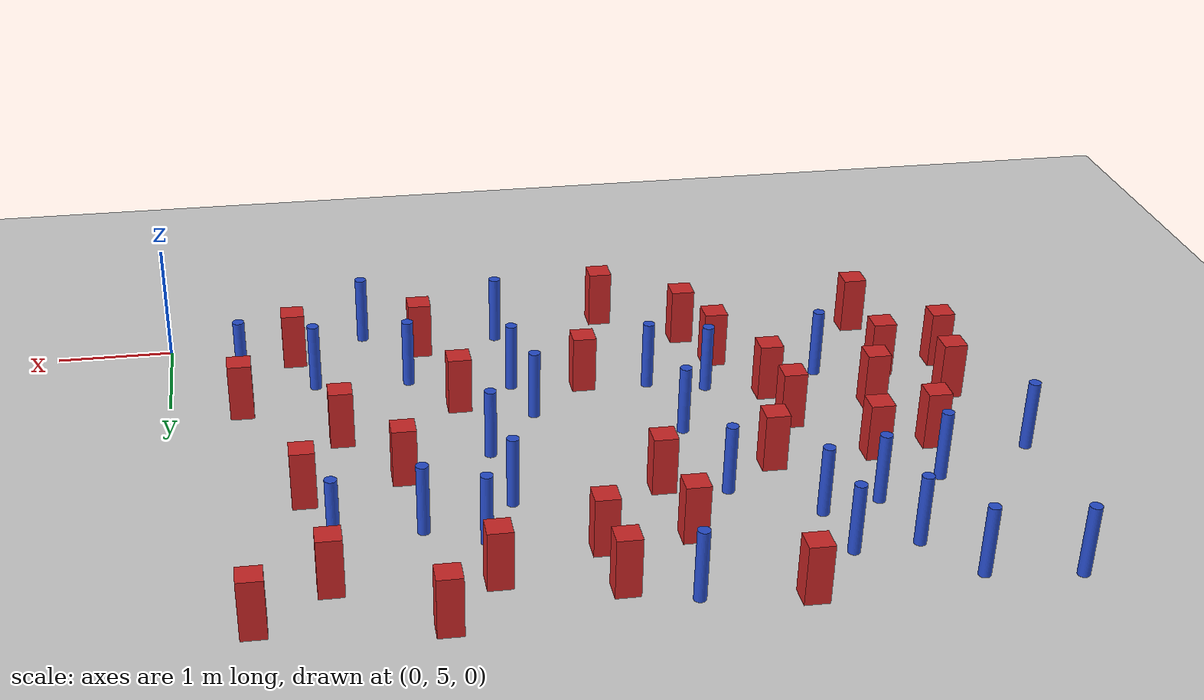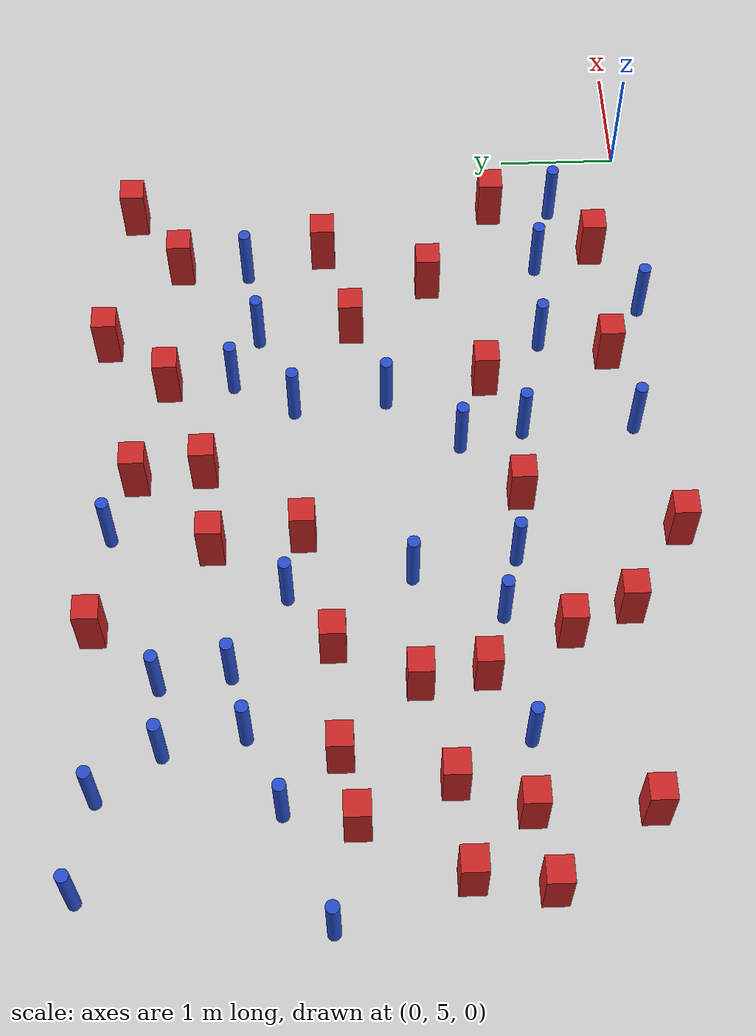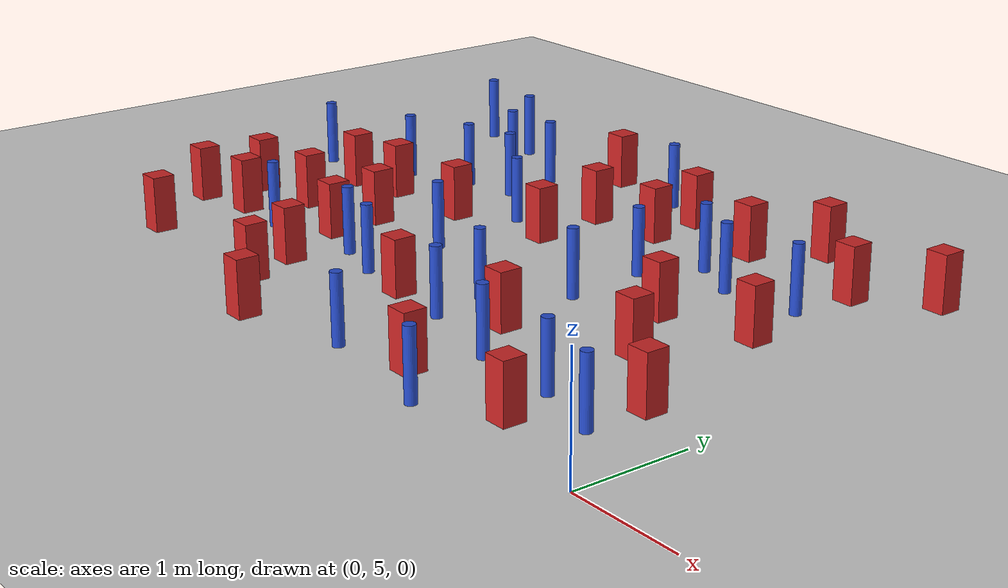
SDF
<sdf version="1.6">
 <world name="default">
  <model name="ground_plane">
   <static>1</static>
   <link name="link">
    <collision name="collision">
     <geometry><plane><normal>0 0 1</normal><size>100 100</size></plane></geometry>
     <surface><friction><ode><mu>100</mu><mu2>50</mu2></ode></friction></surface>
    </collision>
    <visual name="visual">
     <cast_shadows>0</cast_shadows>
     <geometry><plane><normal>0 0 1</normal><size>100 100</size></plane></geometry>
     <material>
      <ambient>1.0 1.0 1.0 1.0</ambient>
      <diffuse>0.8 0.8 0.8 1.0</diffuse>
      <specular>0.01 0.01 0.01 1.000000</specular>
     </material>
    </visual>
   </link>
  </model>
  <model name="square_post_obstacle26">
   <static>true</static>
   <pose>-1.99690841157 9.4471703377 8.22691968438e-08 7.22125133819e-06 -7.54495500217e-07 2.29674213826e-05</pose>
   <link name="link">
    <pose>0 0 0.25 0 -0 0</pose>
    <inertial>
     <mass>100</mass>
     <inertia>
      <ixx>0.166667</ixx>
      <ixy>0</ixy>
      <ixz>0</ixz>
      <iyy>0.166667</iyy>
      <iyz>0</iyz>
      <izz>0.166667</izz>
     </inertia>
    </inertial>
    <collision name="collision"><geometry><box><size>.2 .2 .5</size></box></geometry></collision>
    <visual name="visual">
     <geometry><box><size>.2 .2 .5</size></box></geometry>
     <material>
      <script><name>Gazebo/Red</name><uri>file://media/materials/scripts/gazebo.material</uri></script>
     </material>
    </visual>
   </link>
  </model>
  <model name="square_post_obstacle27">
   <static>true</static>
   <pose>-6.18605493413 6.22715426058 8.22691968438e-08 7.22125133819e-06 -7.54495500217e-07 2.29674213826e-05</pose>
   <link name="link">
    <pose>0 0 0.25 0 -0 0</pose>
    <inertial>
     <mass>100</mass>
     <inertia>
      <ixx>0.166667</ixx>
      <ixy>0</ixy>
      <ixz>0</ixz>
      <iyy>0.166667</iyy>
      <iyz>0</iyz>
      <izz>0.166667</izz>
     </inertia>
    </inertial>
    <collision name="collision"><geometry><box><size>.2 .2 .5</size></box></geometry></collision>
    <visual name="visual">
     <geometry><box><size>.2 .2 .5</size></box></geometry>
     <material>
      <script><name>Gazebo/Red</name><uri>file://media/materials/scripts/gazebo.material</uri></script>
     </material>
    </visual>
   </link>
  </model>
  <model name="square_post_obstacle28">
   <static>true</static>
   <pose>-5.72116184644 7.58453631129 8.22691968438e-08 7.2212513382e-06 -7.54495500217e-07 2.29674213826e-05</pose>
   <link name="link">
    <pose>0 0 0.25 0 -0 0</pose>
    <inertial>
     <mass>100</mass>
     <inertia>
      <ixx>0.166667</ixx>
      <ixy>0</ixy>
      <ixz>0</ixz>
      <iyy>0.166667</iyy>
      <iyz>0</iyz>
      <izz>0.166667</izz>
     </inertia>
    </inertial>
    <collision name="collision"><geometry><box><size>.2 .2 .5</size></box></geometry></collision>
    <visual name="visual">
     <geometry><box><size>.2 .2 .5</size></box></geometry>
     <material>
      <script><name>Gazebo/Red</name><uri>file://media/materials/scripts/gazebo.material</uri></script>
     </material>
    </visual>
   </link>
  </model>
  <model name="square_post_obstacle30">
   <static>true</static>
   <pose>-1.41584440362 6.75614959326 8.22691968438e-08 7.2212513382e-06 -7.54495500217e-07 2.29674213826e-05</pose>
   <link name="link">
    <pose>0 0 0.25 0 -0 0</pose>
    <inertial>
     <mass>100</mass>
     <inertia>
      <ixx>0.166667</ixx>
      <ixy>0</ixy>
      <ixz>0</ixz>
      <iyy>0.166667</iyy>
      <iyz>0</iyz>
      <izz>0.166667</izz>
     </inertia>
    </inertial>
    <collision name="collision"><geometry><box><size>.2 .2 .5</size></box></geometry></collision>
    <visual name="visual">
     <geometry><box><size>.2 .2 .5</size></box></geometry>
     <material>
      <script><name>Gazebo/Red</name><uri>file://media/materials/scripts/gazebo.material</uri></script>
     </material>
    </visual>
   </link>
  </model>
  <model name="pole_obstacle20">
   <static>true</static>
   <pose>-6.12993700592 8.00740763405 2.88873142074e-08 -9.90536690354e-09 4.60219948977e-07 -1.20965994967e-07</pose>
   <link name="link">
    <pose>0 0 0.3 0 -0 0</pose>
    <inertial>
     <mass>1</mass>
     <inertia><ixx>0.145833</ixx><ixy>0</ixy><ixz>0</ixz><iyy>0.145833</iyy><iyz>0</iyz><izz>0.125</izz></inertia>
    </inertial>
    <collision name="collision">
     <geometry><cylinder><radius>0.05</radius><length>.6</length></cylinder></geometry>
    </collision>
    <visual name="visual">
     <geometry><cylinder><radius>0.05</radius><length>.6</length></cylinder></geometry>
     <material>
      <script><name>Gazebo/Blue</name><uri>file://media/materials/scripts/gazebo.material</uri></script>
     </material>
    </visual>
   </link>
  </model>
  <model name="pole_obstacle32">
   <static>true</static>
   <pose>-5.99088189422 9.35597275805 2.88873142074e-08 -9.9053668967e-09 4.60219948993e-07 -1.20965994957e-07</pose>
   <link name="link">
    <pose>0 0 0.3 0 -0 0</pose>
    <inertial>
     <mass>1</mass>
     <inertia><ixx>0.145833</ixx><ixy>0</ixy><ixz>0</ixz><iyy>0.145833</iyy><iyz>0</iyz><izz>0.125</izz></inertia>
    </inertial>
    <collision name="collision">
     <geometry><cylinder><radius>0.05</radius><length>.6</length></cylinder></geometry>
    </collision>
    <visual name="visual">
     <geometry><cylinder><radius>0.05</radius><length>.6</length></cylinder></geometry>
     <material>
      <script><name>Gazebo/Blue</name><uri>file://media/materials/scripts/gazebo.material</uri></script>
     </material>
    </visual>
   </link>
  </model>
  <model name="pole_obstacle35">
   <static>true</static>
   <pose>-1.72144312253 4.96573093868 2.88873142074e-08 -9.90536689852e-09 4.60219948989e-07 -1.2096599496e-07</pose>
   <link name="link">
    <pose>0 0 0.3 0 -0 0</pose>
    <inertial>
     <mass>1</mass>
     <inertia><ixx>0.145833</ixx><ixy>0</ixy><ixz>0</ixz><iyy>0.145833</iyy><iyz>0</iyz><izz>0.125</izz></inertia>
    </inertial>
    <collision name="collision">
     <geometry><cylinder><radius>0.05</radius><length>.6</length></cylinder></geometry>
    </collision>
    <visual name="visual">
     <geometry><cylinder><radius>0.05</radius><length>.6</length></cylinder></geometry>
     <material>
      <script><name>Gazebo/Blue</name><uri>file://media/materials/scripts/gazebo.material</uri></script>
     </material>
    </visual>
   </link>
  </model>
  <model name="pole_obstacle36">
   <static>true</static>
   <pose>-5.0465634937 8.38615592661 2.88873142074e-08 -9.9053668967e-09 4.60219948993e-07 -1.20965994957e-07</pose>
   <link name="link">
    <pose>0 0 0.3 0 -0 0</pose>
    <inertial>
     <mass>1</mass>
     <inertia><ixx>0.145833</ixx><ixy>0</ixy><ixz>0</ixz><iyy>0.145833</iyy><iyz>0</iyz><izz>0.125</izz></inertia>
    </inertial>
    <collision name="collision">
     <geometry><cylinder><radius>0.05</radius><length>.6</length></cylinder></geometry>
    </collision>
    <visual name="visual">
     <geometry><cylinder><radius>0.05</radius><length>.6</length></cylinder></geometry>
     <material>
      <script><name>Gazebo/Blue</name><uri>file://media/materials/scripts/gazebo.material</uri></script>
     </material>
    </visual>
   </link>
  </model>
  <model name="pole_obstacle38">
   <static>true</static>
   <pose>-4.39575598108 7.96659562513 2.88873142074e-08 -9.90536689847e-09 4.60219948989e-07 -1.2096599496e-07</pose>
   <link name="link">
    <pose>0 0 0.3 0 -0 0</pose>
    <inertial>
     <mass>1</mass>
     <inertia><ixx>0.145833</ixx><ixy>0</ixy><ixz>0</ixz><iyy>0.145833</iyy><iyz>0</iyz><izz>0.125</izz></inertia>
    </inertial>
    <collision name="collision">
     <geometry><cylinder><radius>0.05</radius><length>.6</length></cylinder></geometry>
    </collision>
    <visual name="visual">
     <geometry><cylinder><radius>0.05</radius><length>.6</length></cylinder></geometry>
     <material>
      <script><name>Gazebo/Blue</name><uri>file://media/materials/scripts/gazebo.material</uri></script>
     </material>
    </visual>
   </link>
  </model>
  <model name="square_post_obstacle38">
   <static>true</static>
   <pose>-6.65776101693 6.68613472009 8.22691968438e-08 7.22125133819e-06 -7.54495500217e-07 2.29674213826e-05</pose>
   <link name="link">
    <pose>0 0 0.25 0 -0 0</pose>
    <inertial>
     <mass>100</mass>
     <inertia>
      <ixx>0.166667</ixx>
      <ixy>0</ixy>
      <ixz>0</ixz>
      <iyy>0.166667</iyy>
      <iyz>0</iyz>
      <izz>0.166667</izz>
     </inertia>
    </inertial>
    <collision name="collision"><geometry><box><size>.2 .2 .5</size></box></geometry></collision>
    <visual name="visual">
     <geometry><box><size>.2 .2 .5</size></box></geometry>
     <material>
      <script><name>Gazebo/Red</name><uri>file://media/materials/scripts/gazebo.material</uri></script>
     </material>
    </visual>
   </link>
  </model>
  <model name="pole_obstacle39">
   <static>true</static>
   <pose>-6.71826534434 9.4580164645 2.88873142074e-08 -9.9053668967e-09 4.60219948993e-07 -1.20965994957e-07</pose>
   <link name="link">
    <pose>0 0 0.3 0 -0 0</pose>
    <inertial>
     <mass>1</mass>
     <inertia><ixx>0.145833</ixx><ixy>0</ixy><ixz>0</ixz><iyy>0.145833</iyy><iyz>0</iyz><izz>0.125</izz></inertia>
    </inertial>
    <collision name="collision">
     <geometry><cylinder><radius>0.05</radius><length>.6</length></cylinder></geometry>
    </collision>
    <visual name="visual">
     <geometry><cylinder><radius>0.05</radius><length>.6</length></cylinder></geometry>
     <material>
      <script><name>Gazebo/Blue</name><uri>file://media/materials/scripts/gazebo.material</uri></script>
     </material>
    </visual>
   </link>
  </model>
  <model name="pole_obstacle46">
   <static>true</static>
   <pose>-1.94509423327 8.19378915669 2.88873142074e-08 -9.90536690474e-09 4.60219948974e-07 -1.2096599497e-07</pose>
   <link name="link">
    <pose>0 0 0.3 0 -0 0</pose>
    <inertial>
     <mass>1</mass>
     <inertia><ixx>0.145833</ixx><ixy>0</ixy><ixz>0</ixz><iyy>0.145833</iyy><iyz>0</iyz><izz>0.125</izz></inertia>
    </inertial>
    <collision name="collision">
     <geometry><cylinder><radius>0.05</radius><length>.6</length></cylinder></geometry>
    </collision>
    <visual name="visual">
     <geometry><cylinder><radius>0.05</radius><length>.6</length></cylinder></geometry>
     <material>
      <script><name>Gazebo/Blue</name><uri>file://media/materials/scripts/gazebo.material</uri></script>
     </material>
    </visual>
   </link>
  </model>
  <model name="square_post_obstacle57">
   <static>true</static>
   <pose>-3.32416064802 9.16238090248 8.22691968438e-08 7.22125133819e-06 -7.54495500217e-07 2.29674213826e-05</pose>
   <link name="link">
    <pose>0 0 0.25 0 -0 0</pose>
    <inertial>
     <mass>100</mass>
     <inertia>
      <ixx>0.166667</ixx>
      <ixy>0</ixy>
      <ixz>0</ixz>
      <iyy>0.166667</iyy>
      <iyz>0</iyz>
      <izz>0.166667</izz>
     </inertia>
    </inertial>
    <collision name="collision"><geometry><box><size>.2 .2 .5</size></box></geometry></collision>
    <visual name="visual">
     <geometry><box><size>.2 .2 .5</size></box></geometry>
     <material>
      <script><name>Gazebo/Red</name><uri>file://media/materials/scripts/gazebo.material</uri></script>
     </material>
    </visual>
   </link>
  </model>
  <model name="pole_obstacle60">
   <static>true</static>
   <pose>-1.25053326513 5.8081163606 2.88873142074e-08 -9.90536689852e-09 4.60219948989e-07 -1.2096599496e-07</pose>
   <link name="link">
    <pose>0 0 0.3 0 -0 0</pose>
    <inertial>
     <mass>1</mass>
     <inertia><ixx>0.145833</ixx><ixy>0</ixy><ixz>0</ixz><iyy>0.145833</iyy><iyz>0</iyz><izz>0.125</izz></inertia>
    </inertial>
    <collision name="collision">
     <geometry><cylinder><radius>0.05</radius><length>.6</length></cylinder></geometry>
    </collision>
    <visual name="visual">
     <geometry><cylinder><radius>0.05</radius><length>.6</length></cylinder></geometry>
     <material>
      <script><name>Gazebo/Blue</name><uri>file://media/materials/scripts/gazebo.material</uri></script>
     </material>
    </visual>
   </link>
  </model>
  <model name="pole_obstacle64">
   <static>true</static>
   <pose>-3.05620972015 6.55834131625 2.88873142074e-08 -9.90536689859e-09 4.60219948989e-07 -1.20965994961e-07</pose>
   <link name="link">
    <pose>0 0 0.3 0 -0 0</pose>
    <inertial>
     <mass>1</mass>
     <inertia><ixx>0.145833</ixx><ixy>0</ixy><ixz>0</ixz><iyy>0.145833</iyy><iyz>0</iyz><izz>0.125</izz></inertia>
    </inertial>
    <collision name="collision">
     <geometry><cylinder><radius>0.05</radius><length>.6</length></cylinder></geometry>
    </collision>
    <visual name="visual">
     <geometry><cylinder><radius>0.05</radius><length>.6</length></cylinder></geometry>
     <material>
      <script><name>Gazebo/Blue</name><uri>file://media/materials/scripts/gazebo.material</uri></script>
     </material>
    </visual>
   </link>
  </model>
  <model name="pole_obstacle66">
   <static>true</static>
   <pose>-5.12383989695 8.92928146513 2.88873142074e-08 -9.9053668967e-09 4.60219948993e-07 -1.20965994957e-07</pose>
   <link name="link">
    <pose>0 0 0.3 0 -0 0</pose>
    <inertial>
     <mass>1</mass>
     <inertia><ixx>0.145833</ixx><ixy>0</ixy><ixz>0</ixz><iyy>0.145833</iyy><iyz>0</iyz><izz>0.125</izz></inertia>
    </inertial>
    <collision name="collision">
     <geometry><cylinder><radius>0.05</radius><length>.6</length></cylinder></geometry>
    </collision>
    <visual name="visual">
     <geometry><cylinder><radius>0.05</radius><length>.6</length></cylinder></geometry>
     <material>
      <script><name>Gazebo/Blue</name><uri>file://media/materials/scripts/gazebo.material</uri></script>
     </material>
    </visual>
   </link>
  </model>
  <model name="pole_obstacle75">
   <static>true</static>
   <pose>-2.60506463442 7.14588219101 2.88873142074e-08 -9.90536689859e-09 4.60219948989e-07 -1.20965994961e-07</pose>
   <link name="link">
    <pose>0 0 0.3 0 -0 0</pose>
    <inertial>
     <mass>1</mass>
     <inertia><ixx>0.145833</ixx><ixy>0</ixy><ixz>0</ixz><iyy>0.145833</iyy><iyz>0</iyz><izz>0.125</izz></inertia>
    </inertial>
    <collision name="collision">
     <geometry><cylinder><radius>0.05</radius><length>.6</length></cylinder></geometry>
    </collision>
    <visual name="visual">
     <geometry><cylinder><radius>0.05</radius><length>.6</length></cylinder></geometry>
     <material>
      <script><name>Gazebo/Blue</name><uri>file://media/materials/scripts/gazebo.material</uri></script>
     </material>
    </visual>
   </link>
  </model>
  <model name="pole_obstacle90">
   <static>true</static>
   <pose>-2.91591562134 5.1283432839 2.88873142074e-08 -9.90536689859e-09 4.60219948989e-07 -1.20965994961e-07</pose>
   <link name="link">
    <pose>0 0 0.3 0 -0 0</pose>
    <inertial>
     <mass>1</mass>
     <inertia><ixx>0.145833</ixx><ixy>0</ixy><ixz>0</ixz><iyy>0.145833</iyy><iyz>0</iyz><izz>0.125</izz></inertia>
    </inertial>
    <collision name="collision">
     <geometry><cylinder><radius>0.05</radius><length>.6</length></cylinder></geometry>
    </collision>
    <visual name="visual">
     <geometry><cylinder><radius>0.05</radius><length>.6</length></cylinder></geometry>
     <material>
      <script><name>Gazebo/Blue</name><uri>file://media/materials/scripts/gazebo.material</uri></script>
     </material>
    </visual>
   </link>
  </model>
  <model name="pole_obstacle91">
   <static>true</static>
   <pose>-4.60385319143 6.31304760433 2.88873142074e-08 -9.90536690842e-09 4.60219948965e-07 -1.20965994976e-07</pose>
   <link name="link">
    <pose>0 0 0.3 0 -0 0</pose>
    <inertial>
     <mass>1</mass>
     <inertia><ixx>0.145833</ixx><ixy>0</ixy><ixz>0</ixz><iyy>0.145833</iyy><iyz>0</iyz><izz>0.125</izz></inertia>
    </inertial>
    <collision name="collision">
     <geometry><cylinder><radius>0.05</radius><length>.6</length></cylinder></geometry>
    </collision>
    <visual name="visual">
     <geometry><cylinder><radius>0.05</radius><length>.6</length></cylinder></geometry>
     <material>
      <script><name>Gazebo/Blue</name><uri>file://media/materials/scripts/gazebo.material</uri></script>
     </material>
    </visual>
   </link>
  </model>
  <model name="square_post_obstacle86">
   <static>true</static>
   <pose>-5.95780906734 6.76597339724 8.22691968438e-08 7.2212513382e-06 -7.54495500217e-07 2.29674213826e-05</pose>
   <link name="link">
    <pose>0 0 0.25 0 -0 0</pose>
    <inertial>
     <mass>100</mass>
     <inertia>
      <ixx>0.166667</ixx>
      <ixy>0</ixy>
      <ixz>0</ixz>
      <iyy>0.166667</iyy>
      <iyz>0</iyz>
      <izz>0.166667</izz>
     </inertia>
    </inertial>
    <collision name="collision"><geometry><box><size>.2 .2 .5</size></box></geometry></collision>
    <visual name="visual">
     <geometry><box><size>.2 .2 .5</size></box></geometry>
     <material>
      <script><name>Gazebo/Red</name><uri>file://media/materials/scripts/gazebo.material</uri></script>
     </material>
    </visual>
   </link>
  </model>
  <model name="pole_obstacle100">
   <static>true</static>
   <pose>-3.83604831328 9.34904036045 2.88873142074e-08 -9.90536692318e-09 4.6021994893e-07 -1.20965994988e-07</pose>
   <link name="link">
    <pose>0 0 0.3 0 -0 0</pose>
    <inertial>
     <mass>1</mass>
     <inertia><ixx>0.145833</ixx><ixy>0</ixy><ixz>0</ixz><iyy>0.145833</iyy><iyz>0</iyz><izz>0.125</izz></inertia>
    </inertial>
    <collision name="collision">
     <geometry><cylinder><radius>0.05</radius><length>.6</length></cylinder></geometry>
    </collision>
    <visual name="visual">
     <geometry><cylinder><radius>0.05</radius><length>.6</length></cylinder></geometry>
     <material>
      <script><name>Gazebo/Blue</name><uri>file://media/materials/scripts/gazebo.material</uri></script>
     </material>
    </visual>
   </link>
  </model>
  <model name="square_post_obstacle92">
   <static>true</static>
   <pose>-3.5497736577 6.10899998691 8.22691968438e-08 7.2212513382e-06 -7.54495500217e-07 2.29674213826e-05</pose>
   <link name="link">
    <pose>0 0 0.25 0 -0 0</pose>
    <inertial>
     <mass>100</mass>
     <inertia>
      <ixx>0.166667</ixx>
      <ixy>0</ixy>
      <ixz>0</ixz>
      <iyy>0.166667</iyy>
      <iyz>0</iyz>
      <izz>0.166667</izz>
     </inertia>
    </inertial>
    <collision name="collision"><geometry><box><size>.2 .2 .5</size></box></geometry></collision>
    <visual name="visual">
     <geometry><box><size>.2 .2 .5</size></box></geometry>
     <material>
      <script><name>Gazebo/Red</name><uri>file://media/materials/scripts/gazebo.material</uri></script>
     </material>
    </visual>
   </link>
  </model>
  <model name="square_post_obstacle101">
   <static>true</static>
   <pose>-6.24064286661 7.47339995298 8.22691968438e-08 7.2212513382e-06 -7.54495500217e-07 2.29674213826e-05</pose>
   <link name="link">
    <pose>0 0 0.25 0 -0 0</pose>
    <inertial>
     <mass>100</mass>
     <inertia>
      <ixx>0.166667</ixx>
      <ixy>0</ixy>
      <ixz>0</ixz>
      <iyy>0.166667</iyy>
      <iyz>0</iyz>
      <izz>0.166667</izz>
     </inertia>
    </inertial>
    <collision name="collision"><geometry><box><size>.2 .2 .5</size></box></geometry></collision>
    <visual name="visual">
     <geometry><box><size>.2 .2 .5</size></box></geometry>
     <material>
      <script><name>Gazebo/Red</name><uri>file://media/materials/scripts/gazebo.material</uri></script>
     </material>
    </visual>
   </link>
  </model>
  <model name="pole_obstacle115">
   <static>true</static>
   <pose>-2.93475131867 6.04449325141 2.88873142074e-08 -9.90536689859e-09 4.60219948989e-07 -1.20965994961e-07</pose>
   <link name="link">
    <pose>0 0 0.3 0 -0 0</pose>
    <inertial>
     <mass>1</mass>
     <inertia><ixx>0.145833</ixx><ixy>0</ixy><ixz>0</ixz><iyy>0.145833</iyy><iyz>0</iyz><izz>0.125</izz></inertia>
    </inertial>
    <collision name="collision">
     <geometry><cylinder><radius>0.05</radius><length>.6</length></cylinder></geometry>
    </collision>
    <visual name="visual">
     <geometry><cylinder><radius>0.05</radius><length>.6</length></cylinder></geometry>
     <material>
      <script><name>Gazebo/Blue</name><uri>file://media/materials/scripts/gazebo.material</uri></script>
     </material>
    </visual>
   </link>
  </model>
  <model name="square_post_obstacle107">
   <static>true</static>
   <pose>-1.06105499132 7.64160882997 8.22691968438e-08 7.2212513382e-06 -7.54495500217e-07 2.29674213826e-05</pose>
   <link name="link">
    <pose>0 0 0.25 0 -0 0</pose>
    <inertial>
     <mass>100</mass>
     <inertia>
      <ixx>0.166667</ixx>
      <ixy>0</ixy>
      <ixz>0</ixz>
      <iyy>0.166667</iyy>
      <iyz>0</iyz>
      <izz>0.166667</izz>
     </inertia>
    </inertial>
    <collision name="collision"><geometry><box><size>.2 .2 .5</size></box></geometry></collision>
    <visual name="visual">
     <geometry><box><size>.2 .2 .5</size></box></geometry>
     <material>
      <script><name>Gazebo/Red</name><uri>file://media/materials/scripts/gazebo.material</uri></script>
     </material>
    </visual>
   </link>
  </model>
  <model name="square_post_obstacle112">
   <static>true</static>
   <pose>-3.9141313503 4.89036947148 8.22691968438e-08 7.2212513382e-06 -7.54495500217e-07 2.29674213826e-05</pose>
   <link name="link">
    <pose>0 0 0.25 0 -0 0</pose>
    <inertial>
     <mass>100</mass>
     <inertia>
      <ixx>0.166667</ixx>
      <ixy>0</ixy>
      <ixz>0</ixz>
      <iyy>0.166667</iyy>
      <iyz>0</iyz>
      <izz>0.166667</izz>
     </inertia>
    </inertial>
    <collision name="collision"><geometry><box><size>.2 .2 .5</size></box></geometry></collision>
    <visual name="visual">
     <geometry><box><size>.2 .2 .5</size></box></geometry>
     <material>
      <script><name>Gazebo/Red</name><uri>file://media/materials/scripts/gazebo.material</uri></script>
     </material>
    </visual>
   </link>
  </model>
  <model name="pole_obstacle121">
   <static>true</static>
   <pose>-6.98968587761 7.65442404848 2.88873142074e-08 -9.90536690842e-09 4.60219948965e-07 -1.20965994976e-07</pose>
   <link name="link">
    <pose>0 0 0.3 0 -0 0</pose>
    <inertial>
     <mass>1</mass>
     <inertia><ixx>0.145833</ixx><ixy>0</ixy><ixz>0</ixz><iyy>0.145833</iyy><iyz>0</iyz><izz>0.125</izz></inertia>
    </inertial>
    <collision name="collision">
     <geometry><cylinder><radius>0.05</radius><length>.6</length></cylinder></geometry>
    </collision>
    <visual name="visual">
     <geometry><cylinder><radius>0.05</radius><length>.6</length></cylinder></geometry>
     <material>
      <script><name>Gazebo/Blue</name><uri>file://media/materials/scripts/gazebo.material</uri></script>
     </material>
    </visual>
   </link>
  </model>
  <model name="pole_obstacle138">
   <static>true</static>
   <pose>-1.253397796 8.29391921349 2.88873142074e-08 -9.90536690474e-09 4.60219948974e-07 -1.2096599497e-07</pose>
   <link name="link">
    <pose>0 0 0.3 0 -0 0</pose>
    <inertial>
     <mass>1</mass>
     <inertia><ixx>0.145833</ixx><ixy>0</ixy><ixz>0</ixz><iyy>0.145833</iyy><iyz>0</iyz><izz>0.125</izz></inertia>
    </inertial>
    <collision name="collision">
     <geometry><cylinder><radius>0.05</radius><length>.6</length></cylinder></geometry>
    </collision>
    <visual name="visual">
     <geometry><cylinder><radius>0.05</radius><length>.6</length></cylinder></geometry>
     <material>
      <script><name>Gazebo/Blue</name><uri>file://media/materials/scripts/gazebo.material</uri></script>
     </material>
    </visual>
   </link>
  </model>
  <model name="square_post_obstacle120">
   <static>true</static>
   <pose>-6.19050584277 5.35007000771 8.22691968438e-08 7.2212513382e-06 -7.54495500217e-07 2.29674213826e-05</pose>
   <link name="link">
    <pose>0 0 0.25 0 -0 0</pose>
    <inertial>
     <mass>100</mass>
     <inertia>
      <ixx>0.166667</ixx>
      <ixy>0</ixy>
      <ixz>0</ixz>
      <iyy>0.166667</iyy>
      <iyz>0</iyz>
      <izz>0.166667</izz>
     </inertia>
    </inertial>
    <collision name="collision"><geometry><box><size>.2 .2 .5</size></box></geometry></collision>
    <visual name="visual">
     <geometry><box><size>.2 .2 .5</size></box></geometry>
     <material>
      <script><name>Gazebo/Red</name><uri>file://media/materials/scripts/gazebo.material</uri></script>
     </material>
    </visual>
   </link>
  </model>
  <model name="square_post_obstacle122">
   <static>true</static>
   <pose>-2.44304407271 6.32523209158 8.22691968438e-08 7.2212513382e-06 -7.54495500217e-07 2.29674213826e-05</pose>
   <link name="link">
    <pose>0 0 0.25 0 -0 0</pose>
    <inertial>
     <mass>100</mass>
     <inertia>
      <ixx>0.166667</ixx>
      <ixy>0</ixy>
      <ixz>0</ixz>
      <iyy>0.166667</iyy>
      <iyz>0</iyz>
      <izz>0.166667</izz>
     </inertia>
    </inertial>
    <collision name="collision"><geometry><box><size>.2 .2 .5</size></box></geometry></collision>
    <visual name="visual">
     <geometry><box><size>.2 .2 .5</size></box></geometry>
     <material>
      <script><name>Gazebo/Red</name><uri>file://media/materials/scripts/gazebo.material</uri></script>
     </material>
    </visual>
   </link>
  </model>
  <model name="square_post_obstacle127">
   <static>true</static>
   <pose>-1.08909820518 5.31833578583 8.22691968438e-08 7.2212513382e-06 -7.54495500217e-07 2.29674213826e-05</pose>
   <link name="link">
    <pose>0 0 0.25 0 -0 0</pose>
    <inertial>
     <mass>100</mass>
     <inertia>
      <ixx>0.166667</ixx>
      <ixy>0</ixy>
      <ixz>0</ixz>
      <iyy>0.166667</iyy>
      <iyz>0</iyz>
      <izz>0.166667</izz>
     </inertia>
    </inertial>
    <collision name="collision"><geometry><box><size>.2 .2 .5</size></box></geometry></collision>
    <visual name="visual">
     <geometry><box><size>.2 .2 .5</size></box></geometry>
     <material>
      <script><name>Gazebo/Red</name><uri>file://media/materials/scripts/gazebo.material</uri></script>
     </material>
    </visual>
   </link>
  </model>
  <model name="square_post_obstacle134">
   <static>true</static>
   <pose>-1.19550966699 8.85787880748 8.22691968438e-08 7.22125133819e-06 -7.54495500217e-07 2.29674213826e-05</pose>
   <link name="link">
    <pose>0 0 0.25 0 -0 0</pose>
    <inertial>
     <mass>100</mass>
     <inertia>
      <ixx>0.166667</ixx>
      <ixy>0</ixy>
      <ixz>0</ixz>
      <iyy>0.166667</iyy>
      <iyz>0</iyz>
      <izz>0.166667</izz>
     </inertia>
    </inertial>
    <collision name="collision"><geometry><box><size>.2 .2 .5</size></box></geometry></collision>
    <visual name="visual">
     <geometry><box><size>.2 .2 .5</size></box></geometry>
     <material>
      <script><name>Gazebo/Red</name><uri>file://media/materials/scripts/gazebo.material</uri></script>
     </material>
    </visual>
   </link>
  </model>
  <model name="pole_obstacle146">
   <static>true</static>
   <pose>-2.67744833269 7.90150085653 2.88873142074e-08 -9.90536689859e-09 4.60219948989e-07 -1.20965994961e-07</pose>
   <link name="link">
    <pose>0 0 0.3 0 -0 0</pose>
    <inertial>
     <mass>1</mass>
     <inertia><ixx>0.145833</ixx><ixy>0</ixy><ixz>0</ixz><iyy>0.145833</iyy><iyz>0</iyz><izz>0.125</izz></inertia>
    </inertial>
    <collision name="collision">
     <geometry><cylinder><radius>0.05</radius><length>.6</length></cylinder></geometry>
    </collision>
    <visual name="visual">
     <geometry><cylinder><radius>0.05</radius><length>.6</length></cylinder></geometry>
     <material>
      <script><name>Gazebo/Blue</name><uri>file://media/materials/scripts/gazebo.material</uri></script>
     </material>
    </visual>
   </link>
  </model>
  <model name="square_post_obstacle140">
   <static>true</static>
   <pose>-3.97343503362 8.55025391653 8.22691968438e-08 7.22125133819e-06 -7.54495500217e-07 2.29674213826e-05</pose>
   <link name="link">
    <pose>0 0 0.25 0 -0 0</pose>
    <inertial>
     <mass>100</mass>
     <inertia>
      <ixx>0.166667</ixx>
      <ixy>0</ixy>
      <ixz>0</ixz>
      <iyy>0.166667</iyy>
      <iyz>0</iyz>
      <izz>0.166667</izz>
     </inertia>
    </inertial>
    <collision name="collision"><geometry><box><size>.2 .2 .5</size></box></geometry></collision>
    <visual name="visual">
     <geometry><box><size>.2 .2 .5</size></box></geometry>
     <material>
      <script><name>Gazebo/Red</name><uri>file://media/materials/scripts/gazebo.material</uri></script>
     </material>
    </visual>
   </link>
  </model>
  <model name="square_post_obstacle141">
   <static>true</static>
   <pose>-3.26880824625 8.61922904579 8.22691968438e-08 7.22125133819e-06 -7.54495500217e-07 2.29674213826e-05</pose>
   <link name="link">
    <pose>0 0 0.25 0 -0 0</pose>
    <inertial>
     <mass>100</mass>
     <inertia>
      <ixx>0.166667</ixx>
      <ixy>0</ixy>
      <ixz>0</ixz>
      <iyy>0.166667</iyy>
      <iyz>0</iyz>
      <izz>0.166667</izz>
     </inertia>
    </inertial>
    <collision name="collision"><geometry><box><size>.2 .2 .5</size></box></geometry></collision>
    <visual name="visual">
     <geometry><box><size>.2 .2 .5</size></box></geometry>
     <material>
      <script><name>Gazebo/Red</name><uri>file://media/materials/scripts/gazebo.material</uri></script>
     </material>
    </visual>
   </link>
  </model>
  <model name="square_post_obstacle157">
   <static>true</static>
   <pose>-4.65869138077 9.44115025011 8.22691968438e-08 7.22125133819e-06 -7.54495500217e-07 2.29674213826e-05</pose>
   <link name="link">
    <pose>0 0 0.25 0 -0 0</pose>
    <inertial>
     <mass>100</mass>
     <inertia>
      <ixx>0.166667</ixx>
      <ixy>0</ixy>
      <ixz>0</ixz>
      <iyy>0.166667</iyy>
      <iyz>0</iyz>
      <izz>0.166667</izz>
     </inertia>
    </inertial>
    <collision name="collision"><geometry><box><size>.2 .2 .5</size></box></geometry></collision>
    <visual name="visual">
     <geometry><box><size>.2 .2 .5</size></box></geometry>
     <material>
      <script><name>Gazebo/Red</name><uri>file://media/materials/scripts/gazebo.material</uri></script>
     </material>
    </visual>
   </link>
  </model>
  <model name="pole_obstacle166">
   <static>true</static>
   <pose>-5.5375259723 8.27139922147 2.88873142074e-08 -9.9053668967e-09 4.60219948993e-07 -1.20965994957e-07</pose>
   <link name="link">
    <pose>0 0 0.3 0 -0 0</pose>
    <inertial>
     <mass>1</mass>
     <inertia><ixx>0.145833</ixx><ixy>0</ixy><ixz>0</ixz><iyy>0.145833</iyy><iyz>0</iyz><izz>0.125</izz></inertia>
    </inertial>
    <collision name="collision">
     <geometry><cylinder><radius>0.05</radius><length>.6</length></cylinder></geometry>
    </collision>
    <visual name="visual">
     <geometry><cylinder><radius>0.05</radius><length>.6</length></cylinder></geometry>
     <material>
      <script><name>Gazebo/Blue</name><uri>file://media/materials/scripts/gazebo.material</uri></script>
     </material>
    </visual>
   </link>
  </model>
  <model name="square_post_obstacle159">
   <static>true</static>
   <pose>-4.84254554564 7.62151696094 8.22691968438e-08 7.2212513382e-06 -7.54495500217e-07 2.29674213826e-05</pose>
   <link name="link">
    <pose>0 0 0.25 0 -0 0</pose>
    <inertial>
     <mass>100</mass>
     <inertia>
      <ixx>0.166667</ixx>
      <ixy>0</ixy>
      <ixz>0</ixz>
      <iyy>0.166667</iyy>
      <iyz>0</iyz>
      <izz>0.166667</izz>
     </inertia>
    </inertial>
    <collision name="collision"><geometry><box><size>.2 .2 .5</size></box></geometry></collision>
    <visual name="visual">
     <geometry><box><size>.2 .2 .5</size></box></geometry>
     <material>
      <script><name>Gazebo/Red</name><uri>file://media/materials/scripts/gazebo.material</uri></script>
     </material>
    </visual>
   </link>
  </model>
  <model name="pole_obstacle170">
   <static>true</static>
   <pose>-5.65659901193 8.88665083718 2.88873142074e-08 -9.9053668967e-09 4.60219948993e-07 -1.20965994957e-07</pose>
   <link name="link">
    <pose>0 0 0.3 0 -0 0</pose>
    <inertial>
     <mass>1</mass>
     <inertia><ixx>0.145833</ixx><ixy>0</ixy><ixz>0</ixz><iyy>0.145833</iyy><iyz>0</iyz><izz>0.125</izz></inertia>
    </inertial>
    <collision name="collision">
     <geometry><cylinder><radius>0.05</radius><length>.6</length></cylinder></geometry>
    </collision>
    <visual name="visual">
     <geometry><cylinder><radius>0.05</radius><length>.6</length></cylinder></geometry>
     <material>
      <script><name>Gazebo/Blue</name><uri>file://media/materials/scripts/gazebo.material</uri></script>
     </material>
    </visual>
   </link>
  </model>
  <model name="square_post_obstacle169">
   <static>true</static>
   <pose>-4.5854760022 5.35394980307 8.22691968438e-08 7.22125133819e-06 -7.54495500217e-07 2.29674213826e-05</pose>
   <link name="link">
    <pose>0 0 0.25 0 -0 0</pose>
    <inertial>
     <mass>100</mass>
     <inertia>
      <ixx>0.166667</ixx>
      <ixy>0</ixy>
      <ixz>0</ixz>
      <iyy>0.166667</iyy>
      <iyz>0</iyz>
      <izz>0.166667</izz>
     </inertia>
    </inertial>
    <collision name="collision"><geometry><box><size>.2 .2 .5</size></box></geometry></collision>
    <visual name="visual">
     <geometry><box><size>.2 .2 .5</size></box></geometry>
     <material>
      <script><name>Gazebo/Red</name><uri>file://media/materials/scripts/gazebo.material</uri></script>
     </material>
    </visual>
   </link>
  </model>
  <model name="pole_obstacle184">
   <static>true</static>
   <pose>-0.621436527525 5.63781173999 2.88873142074e-08 -9.90536689661e-09 4.60219948993e-07 -1.20965994957e-07</pose>
   <link name="link">
    <pose>0 0 0.3 0 -0 0</pose>
    <inertial>
     <mass>1</mass>
     <inertia><ixx>0.145833</ixx><ixy>0</ixy><ixz>0</ixz><iyy>0.145833</iyy><iyz>0</iyz><izz>0.125</izz></inertia>
    </inertial>
    <collision name="collision">
     <geometry><cylinder><radius>0.05</radius><length>.6</length></cylinder></geometry>
    </collision>
    <visual name="visual">
     <geometry><cylinder><radius>0.05</radius><length>.6</length></cylinder></geometry>
     <material>
      <script><name>Gazebo/Blue</name><uri>file://media/materials/scripts/gazebo.material</uri></script>
     </material>
    </visual>
   </link>
  </model>
  <model name="square_post_obstacle176">
   <static>true</static>
   <pose>-2.42066144597 8.93593511049 8.22691968438e-08 7.22125133819e-06 -7.54495500217e-07 2.29674213826e-05</pose>
   <link name="link">
    <pose>0 0 0.25 0 -0 0</pose>
    <inertial>
     <mass>100</mass>
     <inertia>
      <ixx>0.166667</ixx>
      <ixy>0</ixy>
      <ixz>0</ixz>
      <iyy>0.166667</iyy>
      <iyz>0</iyz>
      <izz>0.166667</izz>
     </inertia>
    </inertial>
    <collision name="collision"><geometry><box><size>.2 .2 .5</size></box></geometry></collision>
    <visual name="visual">
     <geometry><box><size>.2 .2 .5</size></box></geometry>
     <material>
      <script><name>Gazebo/Red</name><uri>file://media/materials/scripts/gazebo.material</uri></script>
     </material>
    </visual>
   </link>
  </model>
  <model name="square_post_obstacle177">
   <static>true</static>
   <pose>-6.75415462625 6.11512754659 8.22691968438e-08 7.2212513382e-06 -7.54495500217e-07 2.29674213826e-05</pose>
   <link name="link">
    <pose>0 0 0.25 0 -0 0</pose>
    <inertial>
     <mass>100</mass>
     <inertia>
      <ixx>0.166667</ixx>
      <ixy>0</ixy>
      <ixz>0</ixz>
      <iyy>0.166667</iyy>
      <iyz>0</iyz>
      <izz>0.166667</izz>
     </inertia>
    </inertial>
    <collision name="collision"><geometry><box><size>.2 .2 .5</size></box></geometry></collision>
    <visual name="visual">
     <geometry><box><size>.2 .2 .5</size></box></geometry>
     <material>
      <script><name>Gazebo/Red</name><uri>file://media/materials/scripts/gazebo.material</uri></script>
     </material>
    </visual>
   </link>
  </model>
  <model name="square_post_obstacle189">
   <static>true</static>
   <pose>-4.77648262694 5.82801844534 8.22691968438e-08 7.2212513382e-06 -7.54495500217e-07 2.29674213826e-05</pose>
   <link name="link">
    <pose>0 0 0.25 0 -0 0</pose>
    <inertial>
     <mass>100</mass>
     <inertia>
      <ixx>0.166667</ixx>
      <ixy>0</ixy>
      <ixz>0</ixz>
      <iyy>0.166667</iyy>
      <iyz>0</iyz>
      <izz>0.166667</izz>
     </inertia>
    </inertial>
    <collision name="collision"><geometry><box><size>.2 .2 .5</size></box></geometry></collision>
    <visual name="visual">
     <geometry><box><size>.2 .2 .5</size></box></geometry>
     <material>
      <script><name>Gazebo/Red</name><uri>file://media/materials/scripts/gazebo.material</uri></script>
     </material>
    </visual>
   </link>
  </model>
  <model name="square_post_obstacle190">
   <static>true</static>
   <pose>-5.16860925038 6.98313562465 8.22691968438e-08 7.2212513382e-06 -7.54495500217e-07 2.29674213826e-05</pose>
   <link name="link">
    <pose>0 0 0.25 0 -0 0</pose>
    <inertial>
     <mass>100</mass>
     <inertia>
      <ixx>0.166667</ixx>
      <ixy>0</ixy>
      <ixz>0</ixz>
      <iyy>0.166667</iyy>
      <iyz>0</iyz>
      <izz>0.166667</izz>
     </inertia>
    </inertial>
    <collision name="collision"><geometry><box><size>.2 .2 .5</size></box></geometry></collision>
    <visual name="visual">
     <geometry><box><size>.2 .2 .5</size></box></geometry>
     <material>
      <script><name>Gazebo/Red</name><uri>file://media/materials/scripts/gazebo.material</uri></script>
     </material>
    </visual>
   </link>
  </model>
  <model name="square_post_obstacle197">
   <static>true</static>
   <pose>-0.623497504645 9.27688524292 8.22691968438e-08 7.22125133819e-06 -7.54495500217e-07 2.29674213826e-05</pose>
   <link name="link">
    <pose>0 0 0.25 0 -0 0</pose>
    <inertial>
     <mass>100</mass>
     <inertia>
      <ixx>0.166667</ixx>
      <ixy>0</ixy>
      <ixz>0</ixz>
      <iyy>0.166667</iyy>
      <iyz>0</iyz>
      <izz>0.166667</izz>
     </inertia>
    </inertial>
    <collision name="collision"><geometry><box><size>.2 .2 .5</size></box></geometry></collision>
    <visual name="visual">
     <geometry><box><size>.2 .2 .5</size></box></geometry>
     <material>
      <script><name>Gazebo/Red</name><uri>file://media/materials/scripts/gazebo.material</uri></script>
     </material>
    </visual>
   </link>
  </model>
  <model name="square_post_obstacle198">
   <static>true</static>
   <pose>-5.10301960664 6.47907431628 8.22691968438e-08 7.22125133819e-06 -7.54495500217e-07 2.29674213826e-05</pose>
   <link name="link">
    <pose>0 0 0.25 0 -0 0</pose>
    <inertial>
     <mass>100</mass>
     <inertia>
      <ixx>0.166667</ixx>
      <ixy>0</ixy>
      <ixz>0</ixz>
      <iyy>0.166667</iyy>
      <iyz>0</iyz>
      <izz>0.166667</izz>
     </inertia>
    </inertial>
    <collision name="collision"><geometry><box><size>.2 .2 .5</size></box></geometry></collision>
    <visual name="visual">
     <geometry><box><size>.2 .2 .5</size></box></geometry>
     <material>
      <script><name>Gazebo/Red</name><uri>file://media/materials/scripts/gazebo.material</uri></script>
     </material>
    </visual>
   </link>
  </model>
  <model name="square_post_obstacle199">
   <static>true</static>
   <pose>-0.607220066364 6.1740587205 8.22691968438e-08 7.2212513382e-06 -7.54495500217e-07 2.29674213826e-05</pose>
   <link name="link">
    <pose>0 0 0.25 0 -0 0</pose>
    <inertial>
     <mass>100</mass>
     <inertia>
      <ixx>0.166667</ixx>
      <ixy>0</ixy>
      <ixz>0</ixz>
      <iyy>0.166667</iyy>
      <iyz>0</iyz>
      <izz>0.166667</izz>
     </inertia>
    </inertial>
    <collision name="collision"><geometry><box><size>.2 .2 .5</size></box></geometry></collision>
    <visual name="visual">
     <geometry><box><size>.2 .2 .5</size></box></geometry>
     <material>
      <script><name>Gazebo/Red</name><uri>file://media/materials/scripts/gazebo.material</uri></script>
     </material>
    </visual>
   </link>
  </model>
  <model name="square_post_obstacle201">
   <static>true</static>
   <pose>-2.21000891403 5.28151328011 8.22691968438e-08 7.2212513382e-06 -7.54495500217e-07 2.29674213826e-05</pose>
   <link name="link">
    <pose>0 0 0.25 0 -0 0</pose>
    <inertial>
     <mass>100</mass>
     <inertia>
      <ixx>0.166667</ixx>
      <ixy>0</ixy>
      <ixz>0</ixz>
      <iyy>0.166667</iyy>
      <iyz>0</iyz>
      <izz>0.166667</izz>
     </inertia>
    </inertial>
    <collision name="collision"><geometry><box><size>.2 .2 .5</size></box></geometry></collision>
    <visual name="visual">
     <geometry><box><size>.2 .2 .5</size></box></geometry>
     <material>
      <script><name>Gazebo/Red</name><uri>file://media/materials/scripts/gazebo.material</uri></script>
     </material>
    </visual>
   </link>
  </model>
  <model name="pole_obstacle188">
   <static>true</static>
   <pose>-2.40606481677 8.40219991672 2.88873142074e-08 -9.90536692318e-09 4.6021994893e-07 -1.20965994988e-07</pose>
   <link name="link">
    <pose>0 0 0.3 0 -0 0</pose>
    <inertial>
     <mass>1</mass>
     <inertia><ixx>0.145833</ixx><ixy>0</ixy><ixz>0</ixz><iyy>0.145833</iyy><iyz>0</iyz><izz>0.125</izz></inertia>
    </inertial>
    <collision name="collision">
     <geometry><cylinder><radius>0.05</radius><length>.6</length></cylinder></geometry>
    </collision>
    <visual name="visual">
     <geometry><cylinder><radius>0.05</radius><length>.6</length></cylinder></geometry>
     <material>
      <script><name>Gazebo/Blue</name><uri>file://media/materials/scripts/gazebo.material</uri></script>
     </material>
    </visual>
   </link>
  </model>
  <model name="pole_obstacle189">
   <static>true</static>
   <pose>-4.11212725282 6.18195078804 2.88873142074e-08 -9.90536690842e-09 4.60219948965e-07 -1.20965994976e-07</pose>
   <link name="link">
    <pose>0 0 0.3 0 -0 0</pose>
    <inertial>
     <mass>1</mass>
     <inertia><ixx>0.145833</ixx><ixy>0</ixy><ixz>0</ixz><iyy>0.145833</iyy><iyz>0</iyz><izz>0.125</izz></inertia>
    </inertial>
    <collision name="collision">
     <geometry><cylinder><radius>0.05</radius><length>.6</length></cylinder></geometry>
    </collision>
    <visual name="visual">
     <geometry><cylinder><radius>0.05</radius><length>.6</length></cylinder></geometry>
     <material>
      <script><name>Gazebo/Blue</name><uri>file://media/materials/scripts/gazebo.material</uri></script>
     </material>
    </visual>
   </link>
  </model>
  <model name="pole_obstacle190">
   <static>true</static>
   <pose>-4.2499472379 6.99737472631 2.88873142074e-08 -9.90536690842e-09 4.60219948965e-07 -1.20965994976e-07</pose>
   <link name="link">
    <pose>0 0 0.3 0 -0 0</pose>
    <inertial>
     <mass>1</mass>
     <inertia><ixx>0.145833</ixx><ixy>0</ixy><ixz>0</ixz><iyy>0.145833</iyy><iyz>0</iyz><izz>0.125</izz></inertia>
    </inertial>
    <collision name="collision">
     <geometry><cylinder><radius>0.05</radius><length>.6</length></cylinder></geometry>
    </collision>
    <visual name="visual">
     <geometry><cylinder><radius>0.05</radius><length>.6</length></cylinder></geometry>
     <material>
      <script><name>Gazebo/Blue</name><uri>file://media/materials/scripts/gazebo.material</uri></script>
     </material>
    </visual>
   </link>
  </model>
  <model name="pole_obstacle193">
   <static>true</static>
   <pose>-2.05887311989 5.84387723634 2.88873142074e-08 -9.90536689859e-09 4.60219948989e-07 -1.20965994961e-07</pose>
   <link name="link">
    <pose>0 0 0.3 0 -0 0</pose>
    <inertial>
     <mass>1</mass>
     <inertia><ixx>0.145833</ixx><ixy>0</ixy><ixz>0</ixz><iyy>0.145833</iyy><iyz>0</iyz><izz>0.125</izz></inertia>
    </inertial>
    <collision name="collision">
     <geometry><cylinder><radius>0.05</radius><length>.6</length></cylinder></geometry>
    </collision>
    <visual name="visual">
     <geometry><cylinder><radius>0.05</radius><length>.6</length></cylinder></geometry>
     <material>
      <script><name>Gazebo/Blue</name><uri>file://media/materials/scripts/gazebo.material</uri></script>
     </material>
    </visual>
   </link>
  </model>
  <model name="pole_obstacle200">
   <static>true</static>
   <pose>-5.62025338715 6.18108169318 2.88873142074e-08 -9.90536690842e-09 4.60219948965e-07 -1.20965994976e-07</pose>
   <link name="link">
    <pose>0 0 0.3 0 -0 0</pose>
    <inertial>
     <mass>1</mass>
     <inertia><ixx>0.145833</ixx><ixy>0</ixy><ixz>0</ixz><iyy>0.145833</iyy><iyz>0</iyz><izz>0.125</izz></inertia>
    </inertial>
    <collision name="collision">
     <geometry><cylinder><radius>0.05</radius><length>.6</length></cylinder></geometry>
    </collision>
    <visual name="visual">
     <geometry><cylinder><radius>0.05</radius><length>.6</length></cylinder></geometry>
     <material>
      <script><name>Gazebo/Blue</name><uri>file://media/materials/scripts/gazebo.material</uri></script>
     </material>
    </visual>
   </link>
  </model>
  <model name="square_post_obstacle216">
   <static>true</static>
   <pose>-3.88278497336 7.83833437511 8.22691968438e-08 7.2212513382e-06 -7.54495500217e-07 2.29674213826e-05</pose>
   <link name="link">
    <pose>0 0 0.25 0 -0 0</pose>
    <inertial>
     <mass>100</mass>
     <inertia>
      <ixx>0.166667</ixx>
      <ixy>0</ixy>
      <ixz>0</ixz>
      <iyy>0.166667</iyy>
      <iyz>0</iyz>
      <izz>0.166667</izz>
     </inertia>
    </inertial>
    <collision name="collision"><geometry><box><size>.2 .2 .5</size></box></geometry></collision>
    <visual name="visual">
     <geometry><box><size>.2 .2 .5</size></box></geometry>
     <material>
      <script><name>Gazebo/Red</name><uri>file://media/materials/scripts/gazebo.material</uri></script>
     </material>
    </visual>
   </link>
  </model>
  <model name="square_post_obstacle218">
   <static>true</static>
   <pose>-1.87055533012 7.41875606344 8.22691968438e-08 7.2212513382e-06 -7.54495500217e-07 2.29674213826e-05</pose>
   <link name="link">
    <pose>0 0 0.25 0 -0 0</pose>
    <inertial>
     <mass>100</mass>
     <inertia>
      <ixx>0.166667</ixx>
      <ixy>0</ixy>
      <ixz>0</ixz>
      <iyy>0.166667</iyy>
      <iyz>0</iyz>
      <izz>0.166667</izz>
     </inertia>
    </inertial>
    <collision name="collision"><geometry><box><size>.2 .2 .5</size></box></geometry></collision>
    <visual name="visual">
     <geometry><box><size>.2 .2 .5</size></box></geometry>
     <material>
      <script><name>Gazebo/Red</name><uri>file://media/materials/scripts/gazebo.material</uri></script>
     </material>
    </visual>
   </link>
  </model>
 </world>
</sdf>
